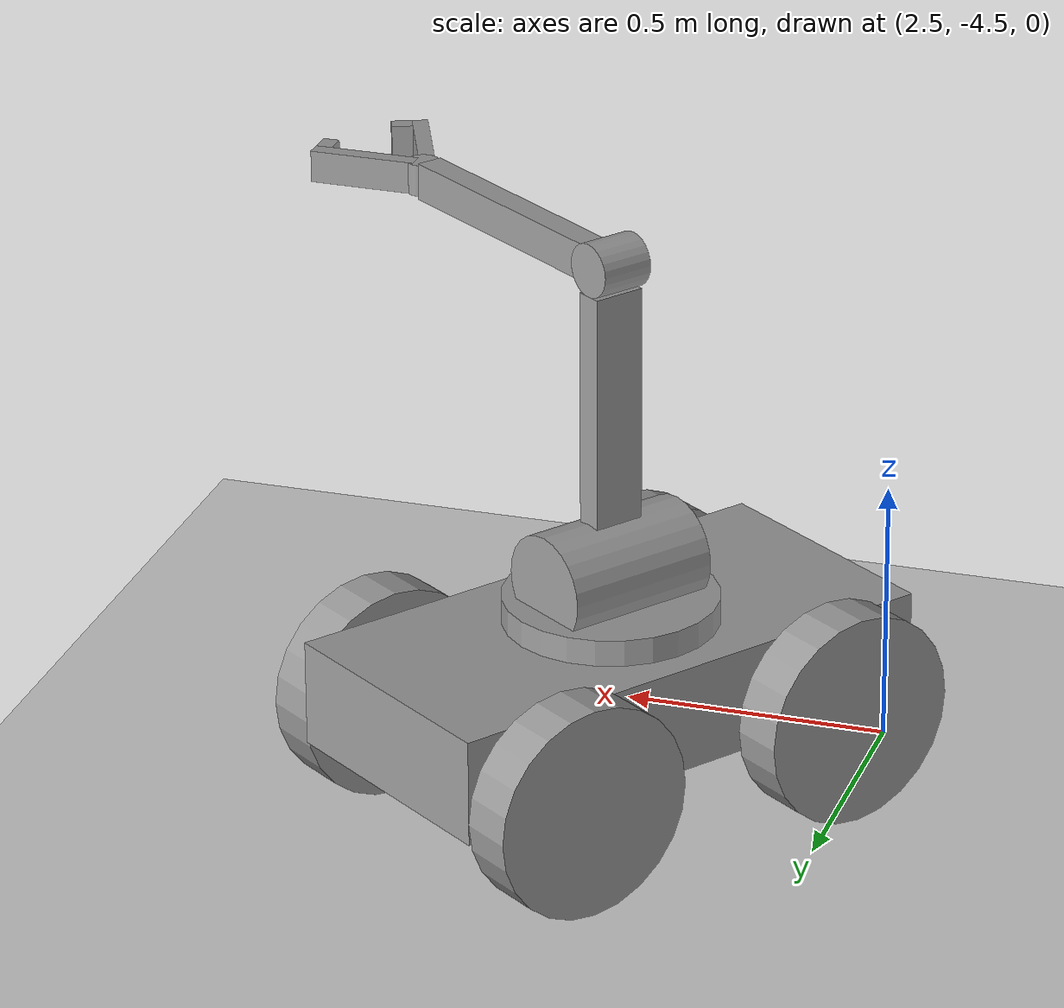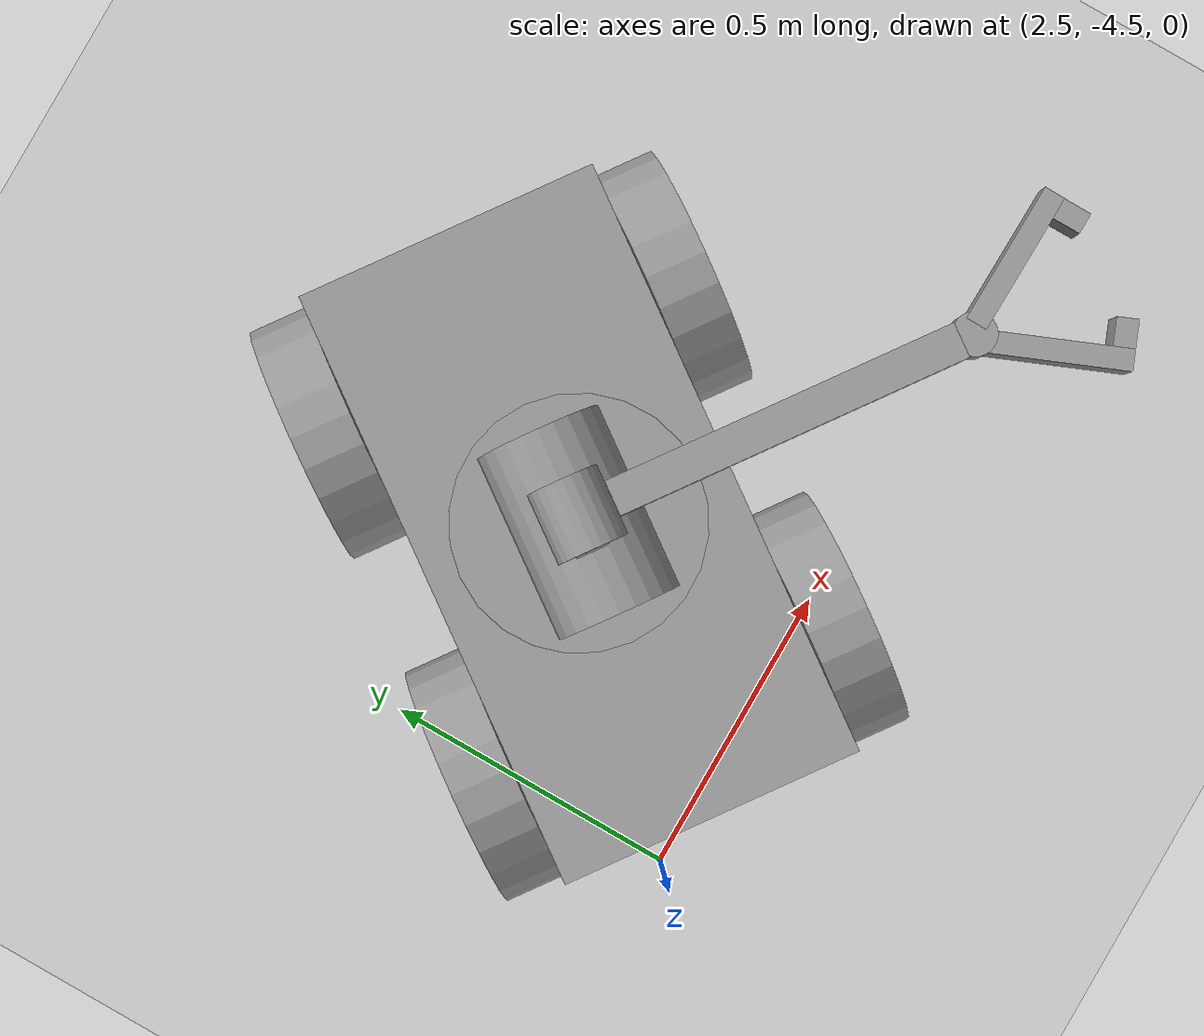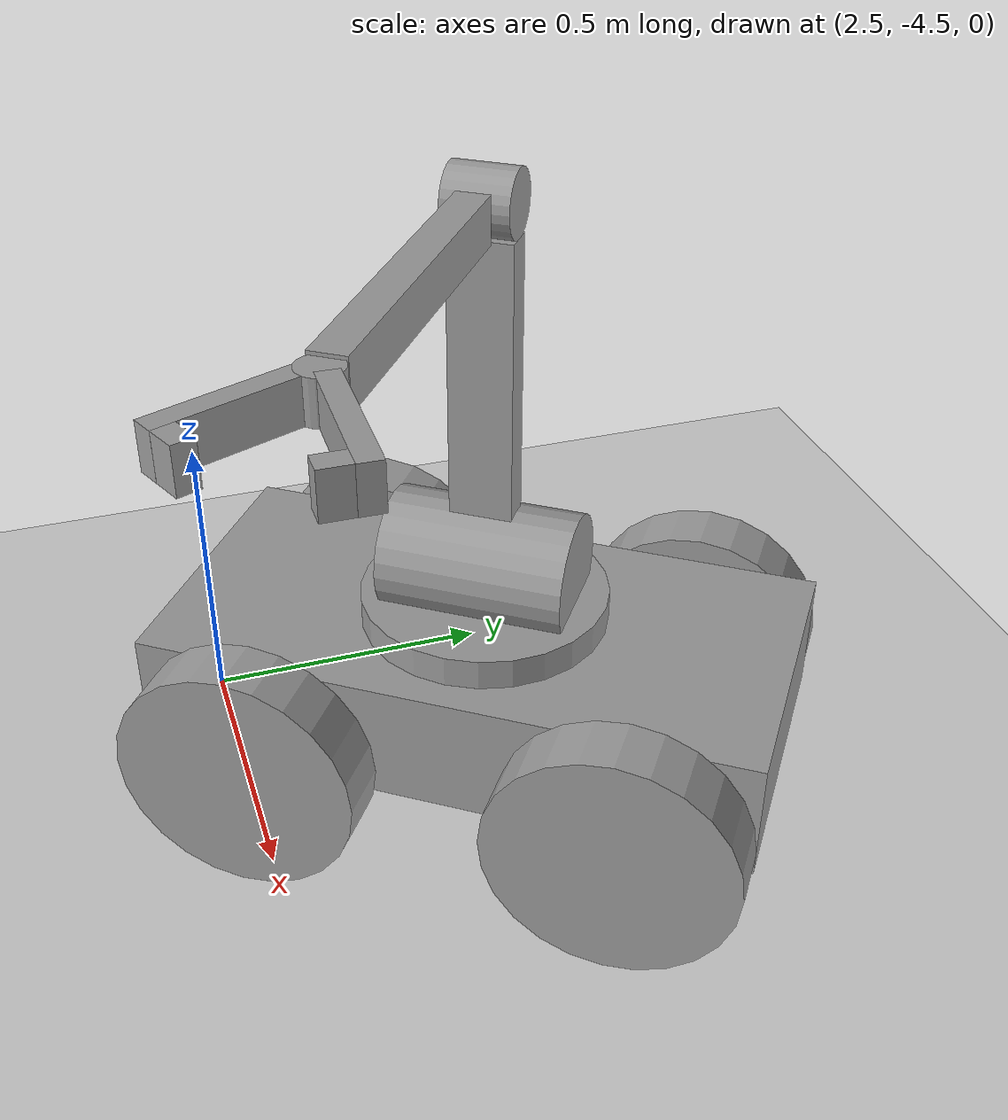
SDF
<sdf version="1.6">
 <world name="default">
  <model name="ground_plane">
   <static>1</static>
   <link name="link">
    <collision name="collision">
     <geometry><plane><normal>0 0 1</normal><size>100 100</size></plane></geometry>
     <surface><friction><ode><mu>100</mu><mu2>50</mu2></ode></friction></surface>
    </collision>
    <visual name="visual">
     <cast_shadows>0</cast_shadows>
     <geometry><plane><normal>0 0 1</normal><size>100 100</size></plane></geometry>
     <material>
      <script><uri>file://media/materials/scripts/gazebo.material</uri><name>Gazebo/Grey</name></script>
     </material>
    </visual>
   </link>
  </model>
  <model name="SimpleRobot_0">
   <link name="link_0">
    <pose>0.29527 -0.23469 0.458333 0 -0 0</pose>
    <inertial>
     <mass>10</mass>
     <inertia>
      <ixx>0.166667</ixx>
      <ixy>0</ixy>
      <ixz>0</ixz>
      <iyy>0.166667</iyy>
      <iyz>0</iyz>
      <izz>0.166667</izz>
     </inertia>
    </inertial>
    <visual name="visual">
     <geometry><box><size>0.5 1 0.2</size></box></geometry>
     <material>
      <lighting>1</lighting>
      <script><uri>file://media/materials/scripts/gazebo.material</uri><name>Gazebo/Grey</name></script>
      <ambient>0.3 0.3 0.3 1</ambient>
      <diffuse>0.7 0.7 0.7 1</diffuse>
      <specular>0.01 0.01 0.01 1</specular>
      <emissive>0 0 0 1</emissive>
      <shader type="vertex"><normal_map>__default__</normal_map></shader>
     </material>
    </visual>
    <collision name="collision">
     <geometry><box><size>0.5 1 0.2</size></box></geometry>
     <surface>
      <friction>
       <ode><mu>1</mu><mu2>1</mu2><fdir1>0 0 0</fdir1><slip1>0</slip1><slip2>0</slip2></ode>
       <torsional>
        <coefficient>1</coefficient>
        <patch_radius>0</patch_radius>
        <surface_radius>0</surface_radius>
        <use_patch_radius>1</use_patch_radius>
        <ode><slip>0</slip></ode>
       </torsional>
      </friction>
      <bounce><restitution_coefficient>0</restitution_coefficient><threshold>1e+06</threshold></bounce>
      <contact>
       <collide_without_contact>0</collide_without_contact>
       <collide_without_contact_bitmask>1</collide_without_contact_bitmask>
       <collide_bitmask>1</collide_bitmask>
       <ode>
        <soft_cfm>0</soft_cfm>
        <soft_erp>0.2</soft_erp>
        <kp>1e+13</kp>
        <kd>1</kd>
        <max_vel>0.01</max_vel>
        <min_depth>0</min_depth>
       </ode>
       <bullet>
        <split_impulse>1</split_impulse>
        <split_impulse_penetration_threshold>-0.01</split_impulse_penetration_threshold>
        <soft_cfm>0</soft_cfm>
        <soft_erp>0.2</soft_erp>
        <kp>1e+13</kp>
        <kd>1</kd>
       </bullet>
      </contact>
     </surface>
    </collision>
   </link>
   <link name="link_0_0">
    <pose>0.29527 -0.23469 0.658347 0 -0 0</pose>
    <inertial>
     <mass>1</mass>
     <inertia><ixx>0.145833</ixx><ixy>0</ixy><ixz>0</ixz><iyy>0.145833</iyy><iyz>0</iyz><izz>0.125</izz></inertia>
    </inertial>
    <visual name="visual">
     <pose>0 0 0 1.5707 -0 0</pose>
     <geometry><cylinder><radius>0.1</radius><length>0.3</length></cylinder></geometry>
     <material>
      <lighting>1</lighting>
      <script><uri>file://media/materials/scripts/gazebo.material</uri><name>Gazebo/Grey</name></script>
      <ambient>0.3 0.3 0.3 1</ambient>
      <diffuse>0.7 0.7 0.7 1</diffuse>
      <specular>0.01 0.01 0.01 1</specular>
      <emissive>0 0 0 1</emissive>
      <shader type="vertex"><normal_map>__default__</normal_map></shader>
     </material>
    </visual>
    <collision name="collision">
     <pose>0 0 0 1.5707 -0 0</pose>
     <geometry><cylinder><radius>0.1</radius><length>0.3</length></cylinder></geometry>
     <surface>
      <friction>
       <ode><mu>1</mu><mu2>1</mu2><fdir1>0 0 0</fdir1><slip1>0</slip1><slip2>0</slip2></ode>
       <torsional>
        <coefficient>1</coefficient>
        <patch_radius>0</patch_radius>
        <surface_radius>0</surface_radius>
        <use_patch_radius>1</use_patch_radius>
        <ode><slip>0</slip></ode>
       </torsional>
      </friction>
      <bounce><restitution_coefficient>0</restitution_coefficient><threshold>1e+06</threshold></bounce>
      <contact>
       <collide_without_contact>0</collide_without_contact>
       <collide_without_contact_bitmask>1</collide_without_contact_bitmask>
       <collide_bitmask>1</collide_bitmask>
       <ode>
        <soft_cfm>0</soft_cfm>
        <soft_erp>0.2</soft_erp>
        <kp>1e+13</kp>
        <kd>1</kd>
        <max_vel>0.01</max_vel>
        <min_depth>0</min_depth>
       </ode>
       <bullet>
        <split_impulse>1</split_impulse>
        <split_impulse_penetration_threshold>-0.01</split_impulse_penetration_threshold>
        <soft_cfm>0</soft_cfm>
        <soft_erp>0.2</soft_erp>
        <kp>1e+13</kp>
        <kd>1</kd>
       </bullet>
      </contact>
     </surface>
    </collision>
   </link>
   <link name="link_0_0_clone">
    <pose>0.29527 -0.23469 1.24743 0 -0 0</pose>
    <inertial>
     <mass>1</mass>
     <inertia><ixx>0.145833</ixx><ixy>0</ixy><ixz>0</ixz><iyy>0.145833</iyy><iyz>0</iyz><izz>0.125</izz></inertia>
    </inertial>
    <visual name="visual_0">
     <pose>0 0 0 1.5707 -0 0</pose>
     <geometry><cylinder><radius>0.05</radius><length>0.1</length></cylinder></geometry>
     <material>
      <lighting>1</lighting>
      <script><uri>file://media/materials/scripts/gazebo.material</uri><name>Gazebo/Grey</name></script>
      <ambient>0.3 0.3 0.3 1</ambient>
      <diffuse>0.7 0.7 0.7 1</diffuse>
      <specular>0.01 0.01 0.01 1</specular>
      <emissive>0 0 0 1</emissive>
      <shader type="vertex"><normal_map>__default__</normal_map></shader>
     </material>
    </visual>
    <collision name="collision">
     <pose>0 0 0 1.5707 -0 0</pose>
     <geometry><cylinder><radius>0.05</radius><length>0.1</length></cylinder></geometry>
     <surface>
      <friction>
       <ode><mu>1</mu><mu2>1</mu2><fdir1>0 0 0</fdir1><slip1>0</slip1><slip2>0</slip2></ode>
       <torsional>
        <coefficient>1</coefficient>
        <patch_radius>0</patch_radius>
        <surface_radius>0</surface_radius>
        <use_patch_radius>1</use_patch_radius>
        <ode><slip>0</slip></ode>
       </torsional>
      </friction>
      <bounce><restitution_coefficient>0</restitution_coefficient><threshold>1e+06</threshold></bounce>
      <contact>
       <collide_without_contact>0</collide_without_contact>
       <collide_without_contact_bitmask>1</collide_without_contact_bitmask>
       <collide_bitmask>1</collide_bitmask>
       <ode>
        <soft_cfm>0</soft_cfm>
        <soft_erp>0.2</soft_erp>
        <kp>1e+13</kp>
        <kd>1</kd>
        <max_vel>0.01</max_vel>
        <min_depth>0</min_depth>
       </ode>
       <bullet>
        <split_impulse>1</split_impulse>
        <split_impulse_penetration_threshold>-0.01</split_impulse_penetration_threshold>
        <soft_cfm>0</soft_cfm>
        <soft_erp>0.2</soft_erp>
        <kp>1e+13</kp>
        <kd>1</kd>
       </bullet>
      </contact>
     </surface>
    </collision>
   </link>
   <link name="link_0_1">
    <pose>0.86527 -0.23469 1.23978 -1e-05 -7e-06 -0.554613</pose>
    <inertial>
     <mass>1</mass>
     <inertia><ixx>0.145833</ixx><ixy>0</ixy><ixz>0</ixz><iyy>0.145833</iyy><iyz>0</iyz><izz>0.125</izz></inertia>
    </inertial>
    <visual name="visual">
     <geometry><cylinder><radius>0.03</radius><length>0.06</length></cylinder></geometry>
     <material>
      <lighting>1</lighting>
      <script><uri>file://media/materials/scripts/gazebo.material</uri><name>Gazebo/Grey</name></script>
      <ambient>0.3 0.3 0.3 1</ambient>
      <diffuse>0.7 0.7 0.7 1</diffuse>
      <specular>0.01 0.01 0.01 1</specular>
      <emissive>0 0 0 1</emissive>
      <shader type="vertex"><normal_map>__default__</normal_map></shader>
     </material>
    </visual>
    <collision name="collision">
     <geometry><cylinder><radius>0.03</radius><length>0.06</length></cylinder></geometry>
     <surface>
      <friction>
       <ode><mu>1</mu><mu2>1</mu2><fdir1>0 0 0</fdir1><slip1>0</slip1><slip2>0</slip2></ode>
       <torsional>
        <coefficient>1</coefficient>
        <patch_radius>0</patch_radius>
        <surface_radius>0</surface_radius>
        <use_patch_radius>1</use_patch_radius>
        <ode><slip>0</slip></ode>
       </torsional>
      </friction>
      <bounce><restitution_coefficient>0</restitution_coefficient><threshold>1e+06</threshold></bounce>
      <contact>
       <collide_without_contact>0</collide_without_contact>
       <collide_without_contact_bitmask>1</collide_without_contact_bitmask>
       <collide_bitmask>1</collide_bitmask>
       <ode>
        <soft_cfm>0</soft_cfm>
        <soft_erp>0.2</soft_erp>
        <kp>1e+13</kp>
        <kd>1</kd>
        <max_vel>0.01</max_vel>
        <min_depth>0</min_depth>
       </ode>
       <bullet>
        <split_impulse>1</split_impulse>
        <split_impulse_penetration_threshold>-0.01</split_impulse_penetration_threshold>
        <soft_cfm>0</soft_cfm>
        <soft_erp>0.2</soft_erp>
        <kp>1e+13</kp>
        <kd>1</kd>
       </bullet>
      </contact>
     </surface>
    </collision>
   </link>
   <link name="link_1">
    <pose>0.29527 -0.23469 0.583333 0 -0 0</pose>
    <inertial>
     <mass>1</mass>
     <inertia><ixx>0.145833</ixx><ixy>0</ixy><ixz>0</ixz><iyy>0.145833</iyy><iyz>0</iyz><izz>0.125</izz></inertia>
    </inertial>
    <visual name="visual">
     <geometry><cylinder><radius>0.2</radius><length>0.05</length></cylinder></geometry>
     <material>
      <lighting>1</lighting>
      <script><uri>file://media/materials/scripts/gazebo.material</uri><name>Gazebo/Grey</name></script>
      <ambient>0.3 0.3 0.3 1</ambient>
      <diffuse>0.7 0.7 0.7 1</diffuse>
      <specular>0.01 0.01 0.01 1</specular>
      <emissive>0 0 0 1</emissive>
      <shader type="vertex"><normal_map>__default__</normal_map></shader>
     </material>
    </visual>
    <collision name="collision">
     <geometry><cylinder><radius>0.2</radius><length>0.05</length></cylinder></geometry>
     <surface>
      <friction>
       <ode><mu>1</mu><mu2>1</mu2><fdir1>0 0 0</fdir1><slip1>0</slip1><slip2>0</slip2></ode>
       <torsional>
        <coefficient>1</coefficient>
        <patch_radius>0</patch_radius>
        <surface_radius>0</surface_radius>
        <use_patch_radius>1</use_patch_radius>
        <ode><slip>0</slip></ode>
       </torsional>
      </friction>
      <bounce><restitution_coefficient>0</restitution_coefficient><threshold>1e+06</threshold></bounce>
      <contact>
       <collide_without_contact>0</collide_without_contact>
       <collide_without_contact_bitmask>1</collide_without_contact_bitmask>
       <collide_bitmask>1</collide_bitmask>
       <ode>
        <soft_cfm>0</soft_cfm>
        <soft_erp>0.2</soft_erp>
        <kp>1e+13</kp>
        <kd>1</kd>
        <max_vel>0.01</max_vel>
        <min_depth>0</min_depth>
       </ode>
       <bullet>
        <split_impulse>1</split_impulse>
        <split_impulse_penetration_threshold>-0.01</split_impulse_penetration_threshold>
        <soft_cfm>0</soft_cfm>
        <soft_erp>0.2</soft_erp>
        <kp>1e+13</kp>
        <kd>1</kd>
       </bullet>
      </contact>
     </surface>
    </collision>
   </link>
   <link name="link_1_0">
    <pose>0.29527 -0.23469 0.948333 0 -0 0</pose>
    <inertial>
     <mass>1</mass>
     <inertia>
      <ixx>0.166667</ixx>
      <ixy>0</ixy>
      <ixz>0</ixz>
      <iyy>0.166667</iyy>
      <iyz>0</iyz>
      <izz>0.166667</izz>
     </inertia>
    </inertial>
    <visual name="visual">
     <geometry><box><size>0.05 0.1 0.5</size></box></geometry>
     <material>
      <lighting>1</lighting>
      <script><uri>file://media/materials/scripts/gazebo.material</uri><name>Gazebo/Grey</name></script>
      <ambient>0.3 0.3 0.3 1</ambient>
      <diffuse>0.7 0.7 0.7 1</diffuse>
      <specular>0.01 0.01 0.01 1</specular>
      <emissive>0 0 0 1</emissive>
      <shader type="vertex"><normal_map>__default__</normal_map></shader>
     </material>
    </visual>
    <collision name="collision">
     <geometry><box><size>0.05 0.1 0.5</size></box></geometry>
     <surface>
      <friction>
       <ode><mu>1</mu><mu2>1</mu2><fdir1>0 0 0</fdir1><slip1>0</slip1><slip2>0</slip2></ode>
       <torsional>
        <coefficient>1</coefficient>
        <patch_radius>0</patch_radius>
        <surface_radius>0</surface_radius>
        <use_patch_radius>1</use_patch_radius>
        <ode><slip>0</slip></ode>
       </torsional>
      </friction>
      <bounce><restitution_coefficient>0</restitution_coefficient><threshold>1e+06</threshold></bounce>
      <contact>
       <collide_without_contact>0</collide_without_contact>
       <collide_without_contact_bitmask>1</collide_without_contact_bitmask>
       <collide_bitmask>1</collide_bitmask>
       <ode>
        <soft_cfm>0</soft_cfm>
        <soft_erp>0.2</soft_erp>
        <kp>1e+13</kp>
        <kd>1</kd>
        <max_vel>0.01</max_vel>
        <min_depth>0</min_depth>
       </ode>
       <bullet>
        <split_impulse>1</split_impulse>
        <split_impulse_penetration_threshold>-0.01</split_impulse_penetration_threshold>
        <soft_cfm>0</soft_cfm>
        <soft_erp>0.2</soft_erp>
        <kp>1e+13</kp>
        <kd>1</kd>
       </bullet>
      </contact>
     </surface>
    </collision>
   </link>
   <link name="link_1_0_clone">
    <pose>-0.00477 0.065305 0.398328 0 -0 0</pose>
    <inertial>
     <mass>1</mass>
     <inertia><ixx>0.145833</ixx><ixy>0</ixy><ixz>0</ixz><iyy>0.145833</iyy><iyz>0</iyz><izz>0.125</izz></inertia>
    </inertial>
    <visual name="visual">
     <pose>0 0 0 1.5707 0 1.5707</pose>
     <geometry><cylinder><radius>0.2</radius><length>0.1</length></cylinder></geometry>
     <material>
      <lighting>1</lighting>
      <script><uri>file://media/materials/scripts/gazebo.material</uri><name>Gazebo/Grey</name></script>
      <ambient>0.3 0.3 0.3 1</ambient>
      <diffuse>0.7 0.7 0.7 1</diffuse>
      <specular>0.01 0.01 0.01 1</specular>
      <emissive>0 0 0 1</emissive>
      <shader type="vertex"><normal_map>__default__</normal_map></shader>
     </material>
    </visual>
    <collision name="collision">
     <pose>0 0 0 1.5707 0 1.5707</pose>
     <geometry><cylinder><radius>0.2</radius><length>0.1</length></cylinder></geometry>
     <surface>
      <friction>
       <ode><mu>1</mu><mu2>1</mu2><fdir1>0 0 0</fdir1><slip1>0</slip1><slip2>0</slip2></ode>
       <torsional>
        <coefficient>1</coefficient>
        <patch_radius>0</patch_radius>
        <surface_radius>0</surface_radius>
        <use_patch_radius>1</use_patch_radius>
        <ode><slip>0</slip></ode>
       </torsional>
      </friction>
      <bounce><restitution_coefficient>0</restitution_coefficient><threshold>1e+06</threshold></bounce>
      <contact>
       <collide_without_contact>0</collide_without_contact>
       <collide_without_contact_bitmask>1</collide_without_contact_bitmask>
       <collide_bitmask>1</collide_bitmask>
       <ode>
        <soft_cfm>0</soft_cfm>
        <soft_erp>0.2</soft_erp>
        <kp>1e+13</kp>
        <kd>1</kd>
        <max_vel>0.01</max_vel>
        <min_depth>0</min_depth>
       </ode>
       <bullet>
        <split_impulse>1</split_impulse>
        <split_impulse_penetration_threshold>-0.01</split_impulse_penetration_threshold>
        <soft_cfm>0</soft_cfm>
        <soft_erp>0.2</soft_erp>
        <kp>1e+13</kp>
        <kd>1</kd>
       </bullet>
      </contact>
     </surface>
    </collision>
   </link>
   <link name="link_1_0_clone_0">
    <pose>0.59531 0.065305 0.398328 0 -0 0</pose>
    <inertial>
     <mass>1</mass>
     <inertia><ixx>0.145833</ixx><ixy>0</ixy><ixz>0</ixz><iyy>0.145833</iyy><iyz>0</iyz><izz>0.125</izz></inertia>
    </inertial>
    <visual name="visual">
     <pose>0 0 0 1.5707 0 1.5707</pose>
     <geometry><cylinder><radius>0.2</radius><length>0.1</length></cylinder></geometry>
     <material>
      <lighting>1</lighting>
      <script><uri>file://media/materials/scripts/gazebo.material</uri><name>Gazebo/Grey</name></script>
      <ambient>0.3 0.3 0.3 1</ambient>
      <diffuse>0.7 0.7 0.7 1</diffuse>
      <specular>0.01 0.01 0.01 1</specular>
      <emissive>0 0 0 1</emissive>
      <shader type="vertex"><normal_map>__default__</normal_map></shader>
     </material>
    </visual>
    <collision name="collision">
     <pose>0 0 0 1.5707 0 1.5707</pose>
     <geometry><cylinder><radius>0.2</radius><length>0.1</length></cylinder></geometry>
     <surface>
      <friction>
       <ode><mu>1</mu><mu2>1</mu2><fdir1>0 0 0</fdir1><slip1>0</slip1><slip2>0</slip2></ode>
       <torsional>
        <coefficient>1</coefficient>
        <patch_radius>0</patch_radius>
        <surface_radius>0</surface_radius>
        <use_patch_radius>1</use_patch_radius>
        <ode><slip>0</slip></ode>
       </torsional>
      </friction>
      <bounce><restitution_coefficient>0</restitution_coefficient><threshold>1e+06</threshold></bounce>
      <contact>
       <collide_without_contact>0</collide_without_contact>
       <collide_without_contact_bitmask>1</collide_without_contact_bitmask>
       <collide_bitmask>1</collide_bitmask>
       <ode>
        <soft_cfm>0</soft_cfm>
        <soft_erp>0.2</soft_erp>
        <kp>1e+13</kp>
        <kd>1</kd>
        <max_vel>0.01</max_vel>
        <min_depth>0</min_depth>
       </ode>
       <bullet>
        <split_impulse>1</split_impulse>
        <split_impulse_penetration_threshold>-0.01</split_impulse_penetration_threshold>
        <soft_cfm>0</soft_cfm>
        <soft_erp>0.2</soft_erp>
        <kp>1e+13</kp>
        <kd>1</kd>
       </bullet>
      </contact>
     </surface>
    </collision>
   </link>
   <link name="link_1_0_clone_1">
    <pose>0.59531 -0.534685 0.398328 0 -0 0</pose>
    <inertial>
     <mass>1</mass>
     <inertia><ixx>0.145833</ixx><ixy>0</ixy><ixz>0</ixz><iyy>0.145833</iyy><iyz>0</iyz><izz>0.125</izz></inertia>
    </inertial>
    <visual name="visual">
     <pose>0 0 0 1.5707 0 1.5707</pose>
     <geometry><cylinder><radius>0.2</radius><length>0.1</length></cylinder></geometry>
     <material>
      <lighting>1</lighting>
      <script><uri>file://media/materials/scripts/gazebo.material</uri><name>Gazebo/Grey</name></script>
      <ambient>0.3 0.3 0.3 1</ambient>
      <diffuse>0.7 0.7 0.7 1</diffuse>
      <specular>0.01 0.01 0.01 1</specular>
      <emissive>0 0 0 1</emissive>
      <shader type="vertex"><normal_map>__default__</normal_map></shader>
     </material>
    </visual>
    <collision name="collision">
     <pose>0 0 0 1.5707 0 1.5707</pose>
     <geometry><cylinder><radius>0.2</radius><length>0.1</length></cylinder></geometry>
     <surface>
      <friction>
       <ode><mu>1</mu><mu2>1</mu2><fdir1>0 0 0</fdir1><slip1>0</slip1><slip2>0</slip2></ode>
       <torsional>
        <coefficient>1</coefficient>
        <patch_radius>0</patch_radius>
        <surface_radius>0</surface_radius>
        <use_patch_radius>1</use_patch_radius>
        <ode><slip>0</slip></ode>
       </torsional>
      </friction>
      <bounce><restitution_coefficient>0</restitution_coefficient><threshold>1e+06</threshold></bounce>
      <contact>
       <collide_without_contact>0</collide_without_contact>
       <collide_without_contact_bitmask>1</collide_without_contact_bitmask>
       <collide_bitmask>1</collide_bitmask>
       <ode>
        <soft_cfm>0</soft_cfm>
        <soft_erp>0.2</soft_erp>
        <kp>1e+13</kp>
        <kd>1</kd>
        <max_vel>0.01</max_vel>
        <min_depth>0</min_depth>
       </ode>
       <bullet>
        <split_impulse>1</split_impulse>
        <split_impulse_penetration_threshold>-0.01</split_impulse_penetration_threshold>
        <soft_cfm>0</soft_cfm>
        <soft_erp>0.2</soft_erp>
        <kp>1e+13</kp>
        <kd>1</kd>
       </bullet>
      </contact>
     </surface>
    </collision>
   </link>
   <link name="link_1_0_clone_1_clone">
    <pose>-0.00477 -0.534685 0.398328 0 -0 0</pose>
    <inertial>
     <mass>1</mass>
     <inertia><ixx>0.145833</ixx><ixy>0</ixy><ixz>0</ixz><iyy>0.145833</iyy><iyz>0</iyz><izz>0.125</izz></inertia>
    </inertial>
    <visual name="visual">
     <pose>0 0 0 1.5707 0 1.5707</pose>
     <geometry><cylinder><radius>0.2</radius><length>0.1</length></cylinder></geometry>
     <material>
      <lighting>1</lighting>
      <script><uri>file://media/materials/scripts/gazebo.material</uri><name>Gazebo/Grey</name></script>
      <ambient>0.3 0.3 0.3 1</ambient>
      <diffuse>0.7 0.7 0.7 1</diffuse>
      <specular>0.01 0.01 0.01 1</specular>
      <emissive>0 0 0 1</emissive>
      <shader type="vertex"><normal_map>__default__</normal_map></shader>
     </material>
    </visual>
    <collision name="collision">
     <pose>0 0 0 1.5707 0 1.5707</pose>
     <geometry><cylinder><radius>0.2</radius><length>0.1</length></cylinder></geometry>
     <surface>
      <friction>
       <ode><mu>1</mu><mu2>1</mu2><fdir1>0 0 0</fdir1><slip1>0</slip1><slip2>0</slip2></ode>
       <torsional>
        <coefficient>1</coefficient>
        <patch_radius>0</patch_radius>
        <surface_radius>0</surface_radius>
        <use_patch_radius>1</use_patch_radius>
        <ode><slip>0</slip></ode>
       </torsional>
      </friction>
      <bounce><restitution_coefficient>0</restitution_coefficient><threshold>1e+06</threshold></bounce>
      <contact>
       <collide_without_contact>0</collide_without_contact>
       <collide_without_contact_bitmask>1</collide_without_contact_bitmask>
       <collide_bitmask>1</collide_bitmask>
       <ode>
        <soft_cfm>0</soft_cfm>
        <soft_erp>0.2</soft_erp>
        <kp>1e+13</kp>
        <kd>1</kd>
        <max_vel>0.01</max_vel>
        <min_depth>0</min_depth>
       </ode>
       <bullet>
        <split_impulse>1</split_impulse>
        <split_impulse_penetration_threshold>-0.01</split_impulse_penetration_threshold>
        <soft_cfm>0</soft_cfm>
        <soft_erp>0.2</soft_erp>
        <kp>1e+13</kp>
        <kd>1</kd>
       </bullet>
      </contact>
     </surface>
    </collision>
   </link>
   <link name="link_1_0_clone_2">
    <pose>0.59527 -0.23469 1.23978 0 -0 0</pose>
    <inertial>
     <mass>1</mass>
     <inertia>
      <ixx>0.166667</ixx>
      <ixy>0</ixy>
      <ixz>0</ixz>
      <iyy>0.166667</iyy>
      <iyz>0</iyz>
      <izz>0.166667</izz>
     </inertia>
    </inertial>
    <visual name="visual_0">
     <pose>0 0 0 0 1.5707 0</pose>
     <geometry><box><size>0.07 0.05 0.5</size></box></geometry>
     <material>
      <lighting>1</lighting>
      <script><uri>file://media/materials/scripts/gazebo.material</uri><name>Gazebo/Grey</name></script>
      <ambient>0.3 0.3 0.3 1</ambient>
      <diffuse>0.7 0.7 0.7 1</diffuse>
      <specular>0.01 0.01 0.01 1</specular>
      <emissive>0 0 0 1</emissive>
      <shader type="vertex"><normal_map>__default__</normal_map></shader>
     </material>
    </visual>
    <collision name="collision">
     <pose>0 0 0 0 1.5707 0</pose>
     <geometry><box><size>0.07 0.05 0.5</size></box></geometry>
     <surface>
      <friction>
       <ode><mu>1</mu><mu2>1</mu2><fdir1>0 0 0</fdir1><slip1>0</slip1><slip2>0</slip2></ode>
       <torsional>
        <coefficient>1</coefficient>
        <patch_radius>0</patch_radius>
        <surface_radius>0</surface_radius>
        <use_patch_radius>1</use_patch_radius>
        <ode><slip>0</slip></ode>
       </torsional>
      </friction>
      <bounce><restitution_coefficient>0</restitution_coefficient><threshold>1e+06</threshold></bounce>
      <contact>
       <collide_without_contact>0</collide_without_contact>
       <collide_without_contact_bitmask>1</collide_without_contact_bitmask>
       <collide_bitmask>1</collide_bitmask>
       <ode>
        <soft_cfm>0</soft_cfm>
        <soft_erp>0.2</soft_erp>
        <kp>1e+13</kp>
        <kd>1</kd>
        <max_vel>0.01</max_vel>
        <min_depth>0</min_depth>
       </ode>
       <bullet>
        <split_impulse>1</split_impulse>
        <split_impulse_penetration_threshold>-0.01</split_impulse_penetration_threshold>
        <soft_cfm>0</soft_cfm>
        <soft_erp>0.2</soft_erp>
        <kp>1e+13</kp>
        <kd>1</kd>
       </bullet>
      </contact>
     </surface>
    </collision>
   </link>
   <link name="link_1_1">
    <pose>0.954832 -0.298993 1.23978 -1e-05 -7e-06 -0.554613</pose>
    <inertial>
     <mass>1</mass>
     <inertia>
      <ixx>0.166667</ixx>
      <ixy>0</ixy>
      <ixz>0</ixz>
      <iyy>0.166667</iyy>
      <iyz>0</iyz>
      <izz>0.166667</izz>
     </inertia>
    </inertial>
    <visual name="visual">
     <geometry><box><size>0.2 0.03 0.06</size></box></geometry>
     <material>
      <lighting>1</lighting>
      <script><uri>file://media/materials/scripts/gazebo.material</uri><name>Gazebo/Grey</name></script>
      <ambient>0.3 0.3 0.3 1</ambient>
      <diffuse>0.7 0.7 0.7 1</diffuse>
      <specular>0.01 0.01 0.01 1</specular>
      <emissive>0 0 0 1</emissive>
      <shader type="vertex"><normal_map>__default__</normal_map></shader>
     </material>
    </visual>
    <collision name="collision">
     <geometry><box><size>0.2 0.03 0.06</size></box></geometry>
     <surface>
      <friction>
       <ode><mu>1</mu><mu2>1</mu2><fdir1>0 0 0</fdir1><slip1>0</slip1><slip2>0</slip2></ode>
       <torsional>
        <coefficient>1</coefficient>
        <patch_radius>0</patch_radius>
        <surface_radius>0</surface_radius>
        <use_patch_radius>1</use_patch_radius>
        <ode><slip>0</slip></ode>
       </torsional>
      </friction>
      <bounce><restitution_coefficient>0</restitution_coefficient><threshold>1e+06</threshold></bounce>
      <contact>
       <collide_without_contact>0</collide_without_contact>
       <collide_without_contact_bitmask>1</collide_without_contact_bitmask>
       <collide_bitmask>1</collide_bitmask>
       <ode>
        <soft_cfm>0</soft_cfm>
        <soft_erp>0.2</soft_erp>
        <kp>1e+13</kp>
        <kd>1</kd>
        <max_vel>0.01</max_vel>
        <min_depth>0</min_depth>
       </ode>
       <bullet>
        <split_impulse>1</split_impulse>
        <split_impulse_penetration_threshold>-0.01</split_impulse_penetration_threshold>
        <soft_cfm>0</soft_cfm>
        <soft_erp>0.2</soft_erp>
        <kp>1e+13</kp>
        <kd>1</kd>
       </bullet>
      </contact>
     </surface>
    </collision>
   </link>
   <link name="link_1_1_clone">
    <pose>0.954569 -0.166494 1.23978 -1.6e-05 1.7e-05 0.603129</pose>
    <inertial>
     <mass>1</mass>
     <inertia>
      <ixx>0.166667</ixx>
      <ixy>0</ixy>
      <ixz>0</ixz>
      <iyy>0.166667</iyy>
      <iyz>0</iyz>
      <izz>0.166667</izz>
     </inertia>
    </inertial>
    <visual name="visual_0">
     <geometry><box><size>0.2 0.03 0.06</size></box></geometry>
     <material>
      <lighting>1</lighting>
      <script><uri>file://media/materials/scripts/gazebo.material</uri><name>Gazebo/Grey</name></script>
      <ambient>0.3 0.3 0.3 1</ambient>
      <diffuse>0.7 0.7 0.7 1</diffuse>
      <specular>0.01 0.01 0.01 1</specular>
      <emissive>0 0 0 1</emissive>
      <shader type="vertex"><normal_map>__default__</normal_map></shader>
     </material>
    </visual>
    <collision name="collision">
     <geometry><box><size>0.2 0.03 0.06</size></box></geometry>
     <surface>
      <friction>
       <ode><mu>1</mu><mu2>1</mu2><fdir1>0 0 0</fdir1><slip1>0</slip1><slip2>0</slip2></ode>
       <torsional>
        <coefficient>1</coefficient>
        <patch_radius>0</patch_radius>
        <surface_radius>0</surface_radius>
        <use_patch_radius>1</use_patch_radius>
        <ode><slip>0</slip></ode>
       </torsional>
      </friction>
      <bounce><restitution_coefficient>0</restitution_coefficient><threshold>1e+06</threshold></bounce>
      <contact>
       <collide_without_contact>0</collide_without_contact>
       <collide_without_contact_bitmask>1</collide_without_contact_bitmask>
       <collide_bitmask>1</collide_bitmask>
       <ode>
        <soft_cfm>0</soft_cfm>
        <soft_erp>0.2</soft_erp>
        <kp>1e+13</kp>
        <kd>1</kd>
        <max_vel>0.01</max_vel>
        <min_depth>0</min_depth>
       </ode>
       <bullet>
        <split_impulse>1</split_impulse>
        <split_impulse_penetration_threshold>-0.01</split_impulse_penetration_threshold>
        <soft_cfm>0</soft_cfm>
        <soft_erp>0.2</soft_erp>
        <kp>1e+13</kp>
        <kd>1</kd>
       </bullet>
      </contact>
     </surface>
    </collision>
   </link>
   <link name="link_1_1_clone_clone">
    <pose>1.04426 -0.146801 1.23978 -6e-06 1e-06 -0.947743</pose>
    <inertial>
     <mass>1</mass>
     <inertia>
      <ixx>0.166667</ixx>
      <ixy>0</ixy>
      <ixz>0</ixz>
      <iyy>0.166667</iyy>
      <iyz>0</iyz>
      <izz>0.166667</izz>
     </inertia>
    </inertial>
    <visual name="visual_0">
     <geometry><box><size>0.04 0.03 0.06</size></box></geometry>
     <material>
      <lighting>1</lighting>
      <script><uri>file://media/materials/scripts/gazebo.material</uri><name>Gazebo/Grey</name></script>
      <ambient>0.3 0.3 0.3 1</ambient>
      <diffuse>0.7 0.7 0.7 1</diffuse>
      <specular>0.01 0.01 0.01 1</specular>
      <emissive>0 0 0 1</emissive>
      <shader type="vertex"><normal_map>__default__</normal_map></shader>
     </material>
    </visual>
    <collision name="collision">
     <geometry><box><size>0.04 0.03 0.06</size></box></geometry>
     <surface>
      <friction>
       <ode><mu>1</mu><mu2>1</mu2><fdir1>0 0 0</fdir1><slip1>0</slip1><slip2>0</slip2></ode>
       <torsional>
        <coefficient>1</coefficient>
        <patch_radius>0</patch_radius>
        <surface_radius>0</surface_radius>
        <use_patch_radius>1</use_patch_radius>
        <ode><slip>0</slip></ode>
       </torsional>
      </friction>
      <bounce><restitution_coefficient>0</restitution_coefficient><threshold>1e+06</threshold></bounce>
      <contact>
       <collide_without_contact>0</collide_without_contact>
       <collide_without_contact_bitmask>1</collide_without_contact_bitmask>
       <collide_bitmask>1</collide_bitmask>
       <ode>
        <soft_cfm>0</soft_cfm>
        <soft_erp>0.2</soft_erp>
        <kp>1e+13</kp>
        <kd>1</kd>
        <max_vel>0.01</max_vel>
        <min_depth>0</min_depth>
       </ode>
       <bullet>
        <split_impulse>1</split_impulse>
        <split_impulse_penetration_threshold>-0.01</split_impulse_penetration_threshold>
        <soft_cfm>0</soft_cfm>
        <soft_erp>0.2</soft_erp>
        <kp>1e+13</kp>
        <kd>1</kd>
       </bullet>
      </contact>
     </surface>
    </collision>
   </link>
   <link name="link_1_1_clone_clone_clone">
    <pose>1.04508 -0.314757 1.23978 -1e-05 1.4e-05 -2.12888</pose>
    <inertial>
     <mass>1</mass>
     <inertia>
      <ixx>0.166667</ixx>
      <ixy>0</ixy>
      <ixz>0</ixz>
      <iyy>0.166667</iyy>
      <iyz>0</iyz>
      <izz>0.166667</izz>
     </inertia>
    </inertial>
    <visual name="visual_0">
     <geometry><box><size>0.04 0.03 0.06</size></box></geometry>
     <material>
      <lighting>1</lighting>
      <script><uri>file://media/materials/scripts/gazebo.material</uri><name>Gazebo/Grey</name></script>
      <ambient>0.3 0.3 0.3 1</ambient>
      <diffuse>0.7 0.7 0.7 1</diffuse>
      <specular>0.01 0.01 0.01 1</specular>
      <emissive>0 0 0 1</emissive>
      <shader type="vertex"><normal_map>__default__</normal_map></shader>
     </material>
    </visual>
    <collision name="collision">
     <geometry><box><size>0.04 0.03 0.06</size></box></geometry>
     <surface>
      <friction>
       <ode><mu>1</mu><mu2>1</mu2><fdir1>0 0 0</fdir1><slip1>0</slip1><slip2>0</slip2></ode>
       <torsional>
        <coefficient>1</coefficient>
        <patch_radius>0</patch_radius>
        <surface_radius>0</surface_radius>
        <use_patch_radius>1</use_patch_radius>
        <ode><slip>0</slip></ode>
       </torsional>
      </friction>
      <bounce><restitution_coefficient>0</restitution_coefficient><threshold>1e+06</threshold></bounce>
      <contact>
       <collide_without_contact>0</collide_without_contact>
       <collide_without_contact_bitmask>1</collide_without_contact_bitmask>
       <collide_bitmask>1</collide_bitmask>
       <ode>
        <soft_cfm>0</soft_cfm>
        <soft_erp>0.2</soft_erp>
        <kp>1e+13</kp>
        <kd>1</kd>
        <max_vel>0.01</max_vel>
        <min_depth>0</min_depth>
       </ode>
       <bullet>
        <split_impulse>1</split_impulse>
        <split_impulse_penetration_threshold>-0.01</split_impulse_penetration_threshold>
        <soft_cfm>0</soft_cfm>
        <soft_erp>0.2</soft_erp>
        <kp>1e+13</kp>
        <kd>1</kd>
       </bullet>
      </contact>
     </surface>
    </collision>
   </link>
   <joint name="link_0_0_JOINT_9" type="fixed">
    <parent>link_0_0</parent>
    <child>link_1_0</child>
    <physics>
     <ode><limit><cfm>0</cfm><erp>0.2</erp></limit><suspension><cfm>0</cfm><erp>0.2</erp></suspension></ode>
    </physics>
   </joint>
   <joint name="link_0_0_clone_JOINT_11" type="revolute">
    <parent>link_0_0_clone</parent>
    <child>link_1_0_clone_2</child>
    <axis>
     <xyz>1 0 0</xyz>
     <use_parent_model_frame>0</use_parent_model_frame>
     <limit>
      <lower>-1.79769e+308</lower>
      <upper>1.79769e+308</upper>
      <effort>-1</effort>
      <velocity>-1</velocity>
     </limit>
     <dynamics>
      <spring_reference>0</spring_reference>
      <spring_stiffness>0</spring_stiffness>
      <damping>0</damping>
      <friction>0</friction>
     </dynamics>
    </axis>
    <physics>
     <ode><limit><cfm>0</cfm><erp>0.2</erp></limit><suspension><cfm>0</cfm><erp>0.2</erp></suspension></ode>
    </physics>
   </joint>
   <joint name="link_0_1_JOINT_1" type="revolute">
    <parent>link_0_1</parent>
    <child>link_1_1</child>
    <pose>-0.11 0.01 0 0 -0 0</pose>
    <axis>
     <xyz>0 0 1</xyz>
     <use_parent_model_frame>0</use_parent_model_frame>
     <limit>
      <lower>-1.79769e+308</lower>
      <upper>1.79769e+308</upper>
      <effort>-1</effort>
      <velocity>-1</velocity>
     </limit>
     <dynamics>
      <spring_reference>0</spring_reference>
      <spring_stiffness>0</spring_stiffness>
      <damping>0</damping>
      <friction>0</friction>
     </dynamics>
    </axis>
    <physics>
     <ode><limit><cfm>0</cfm><erp>0.2</erp></limit><suspension><cfm>0</cfm><erp>0.2</erp></suspension></ode>
    </physics>
   </joint>
   <joint name="link_0_1_JOINT_3" type="revolute">
    <parent>link_0_1</parent>
    <child>link_1_1_clone</child>
    <pose>-0.11 -0.005 0 0 -0 0</pose>
    <axis>
     <xyz>0 0 1</xyz>
     <use_parent_model_frame>0</use_parent_model_frame>
     <limit>
      <lower>-1.79769e+308</lower>
      <upper>1.79769e+308</upper>
      <effort>-1</effort>
      <velocity>-1</velocity>
     </limit>
     <dynamics>
      <spring_reference>0</spring_reference>
      <spring_stiffness>0</spring_stiffness>
      <damping>0</damping>
      <friction>0</friction>
     </dynamics>
    </axis>
    <physics>
     <ode><limit><cfm>0</cfm><erp>0.2</erp></limit><suspension><cfm>0</cfm><erp>0.2</erp></suspension></ode>
    </physics>
   </joint>
   <joint name="link_0_JOINT_1" type="revolute">
    <parent>link_0</parent>
    <child>link_1</child>
    <axis>
     <xyz>0 0 1</xyz>
     <use_parent_model_frame>0</use_parent_model_frame>
     <limit>
      <lower>-1.79769e+308</lower>
      <upper>1.79769e+308</upper>
      <effort>-1</effort>
      <velocity>-1</velocity>
     </limit>
     <dynamics>
      <spring_reference>0</spring_reference>
      <spring_stiffness>0</spring_stiffness>
      <damping>0</damping>
      <friction>0</friction>
     </dynamics>
    </axis>
    <physics>
     <ode><limit><cfm>0</cfm><erp>0.2</erp></limit><suspension><cfm>0</cfm><erp>0.2</erp></suspension></ode>
    </physics>
   </joint>
   <joint name="link_0_JOINT_2" type="revolute">
    <parent>link_0</parent>
    <child>link_1_0_clone_0</child>
    <axis>
     <xyz>1 0 0</xyz>
     <use_parent_model_frame>0</use_parent_model_frame>
     <limit>
      <lower>-1.79769e+308</lower>
      <upper>1.79769e+308</upper>
      <effort>-1</effort>
      <velocity>-1</velocity>
     </limit>
     <dynamics>
      <spring_reference>0</spring_reference>
      <spring_stiffness>0</spring_stiffness>
      <damping>0</damping>
      <friction>0</friction>
     </dynamics>
    </axis>
    <physics>
     <ode><limit><cfm>0</cfm><erp>0.2</erp></limit><suspension><cfm>0</cfm><erp>0.2</erp></suspension></ode>
    </physics>
   </joint>
   <joint name="link_0_JOINT_3" type="revolute">
    <parent>link_0</parent>
    <child>link_1_0_clone</child>
    <axis>
     <xyz>1 0 0</xyz>
     <use_parent_model_frame>0</use_parent_model_frame>
     <limit>
      <lower>-1.79769e+308</lower>
      <upper>1.79769e+308</upper>
      <effort>-1</effort>
      <velocity>-1</velocity>
     </limit>
     <dynamics>
      <spring_reference>0</spring_reference>
      <spring_stiffness>0</spring_stiffness>
      <damping>0</damping>
      <friction>0</friction>
     </dynamics>
    </axis>
    <physics>
     <ode><limit><cfm>0</cfm><erp>0.2</erp></limit><suspension><cfm>0</cfm><erp>0.2</erp></suspension></ode>
    </physics>
   </joint>
   <joint name="link_0_JOINT_5" type="revolute">
    <parent>link_0</parent>
    <child>link_1_0_clone_1_clone</child>
    <axis>
     <xyz>1 0 0</xyz>
     <use_parent_model_frame>0</use_parent_model_frame>
     <limit>
      <lower>-1.79769e+308</lower>
      <upper>1.79769e+308</upper>
      <effort>-1</effort>
      <velocity>-1</velocity>
     </limit>
     <dynamics>
      <spring_reference>0</spring_reference>
      <spring_stiffness>0</spring_stiffness>
      <damping>0</damping>
      <friction>0</friction>
     </dynamics>
    </axis>
    <physics>
     <ode><limit><cfm>0</cfm><erp>0.2</erp></limit><suspension><cfm>0</cfm><erp>0.2</erp></suspension></ode>
    </physics>
   </joint>
   <joint name="link_0_JOINT_6" type="revolute">
    <parent>link_0</parent>
    <child>link_1_0_clone_1</child>
    <axis>
     <xyz>1 0 0</xyz>
     <use_parent_model_frame>0</use_parent_model_frame>
     <limit>
      <lower>-1.79769e+308</lower>
      <upper>1.79769e+308</upper>
      <effort>-1</effort>
      <velocity>-1</velocity>
     </limit>
     <dynamics>
      <spring_reference>0</spring_reference>
      <spring_stiffness>0</spring_stiffness>
      <damping>0</damping>
      <friction>0</friction>
     </dynamics>
    </axis>
    <physics>
     <ode><limit><cfm>0</cfm><erp>0.2</erp></limit><suspension><cfm>0</cfm><erp>0.2</erp></suspension></ode>
    </physics>
   </joint>
   <joint name="link_1_0_JOINT_10" type="revolute">
    <parent>link_1_0</parent>
    <child>link_0_0_clone</child>
    <axis>
     <xyz>0 1 0</xyz>
     <use_parent_model_frame>0</use_parent_model_frame>
     <limit>
      <lower>-1.79769e+308</lower>
      <upper>1.79769e+308</upper>
      <effort>-1</effort>
      <velocity>-1</velocity>
     </limit>
     <dynamics>
      <spring_reference>0</spring_reference>
      <spring_stiffness>0</spring_stiffness>
      <damping>0</damping>
      <friction>0</friction>
     </dynamics>
    </axis>
    <physics>
     <ode><limit><cfm>0</cfm><erp>0.2</erp></limit><suspension><cfm>0</cfm><erp>0.2</erp></suspension></ode>
    </physics>
   </joint>
   <joint name="link_1_0_clone_2_JOINT_0" type="fixed">
    <parent>link_1_0_clone_2</parent>
    <child>link_0_1</child>
    <physics>
     <ode><limit><cfm>0</cfm><erp>0.2</erp></limit><suspension><cfm>0</cfm><erp>0.2</erp></suspension></ode>
    </physics>
   </joint>
   <joint name="link_1_1_JOINT_5" type="fixed">
    <parent>link_1_1</parent>
    <child>link_1_1_clone_clone_clone</child>
    <physics>
     <ode><limit><cfm>0</cfm><erp>0.2</erp></limit><suspension><cfm>0</cfm><erp>0.2</erp></suspension></ode>
    </physics>
   </joint>
   <joint name="link_1_1_clone_JOINT_4" type="fixed">
    <parent>link_1_1_clone</parent>
    <child>link_1_1_clone_clone</child>
    <physics>
     <ode><limit><cfm>0</cfm><erp>0.2</erp></limit><suspension><cfm>0</cfm><erp>0.2</erp></suspension></ode>
    </physics>
   </joint>
   <joint name="link_1_JOINT_8" type="revolute">
    <parent>link_1</parent>
    <child>link_0_0</child>
    <axis>
     <xyz>0 1 0</xyz>
     <use_parent_model_frame>0</use_parent_model_frame>
     <limit>
      <lower>-1.79769e+308</lower>
      <upper>1.79769e+308</upper>
      <effort>-1</effort>
      <velocity>-1</velocity>
     </limit>
     <dynamics>
      <spring_reference>0</spring_reference>
      <spring_stiffness>0</spring_stiffness>
      <damping>0</damping>
      <friction>0</friction>
     </dynamics>
    </axis>
    <physics>
     <ode><limit><cfm>0</cfm><erp>0.2</erp></limit><suspension><cfm>0</cfm><erp>0.2</erp></suspension></ode>
    </physics>
   </joint>
   <static>0</static>
   <pose>2.81041 -3.7429 -0.198327 -6e-06 7e-06 -0.622698</pose>
  </model>
 </world>
</sdf>
